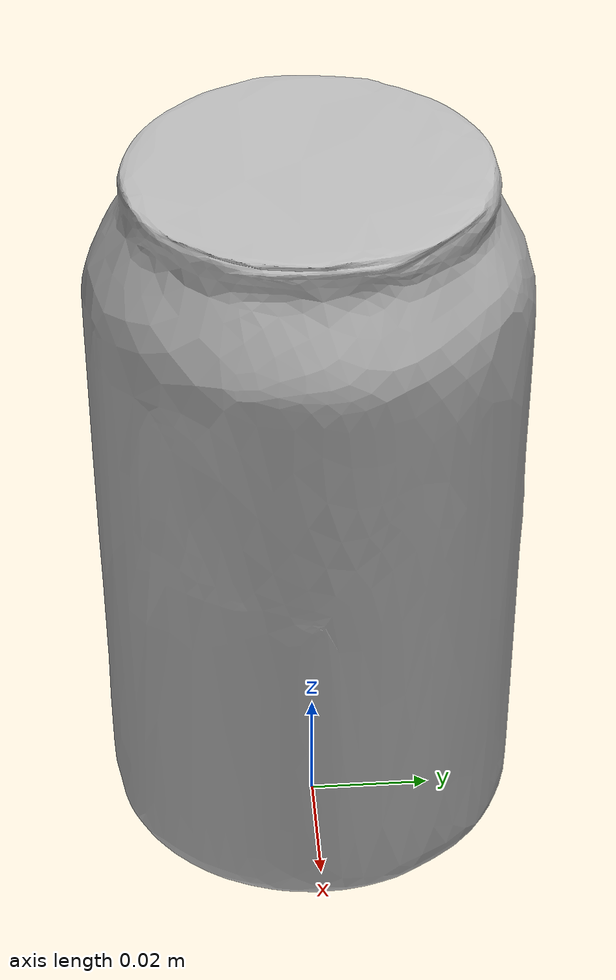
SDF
<?xml version="1.0" ?>
<sdf version="1.6">
    <model name="movable_coke_can_green">
        <link name="link">
            <inertial>
                <pose>0 0 0 0 0 0</pose>
                <mass>0.0149</mass>
                <inertia>
                <ixx>0.00001</ixx>
                <ixy>0.0</ixy>
                <ixz>0.0</ixz>
                <iyy>0.00001</iyy>
                <iyz>0.0</iyz>
                <izz>0.00001</izz>
                </inertia>
            </inertial>
            <collision name="collision">
                <pose>0 0 0.061 0 0 0</pose>
                <geometry>
                    <cylinder>
                    <radius>0.033</radius>
                    <length>0.122</length>
                    </cylinder>
                </geometry>
            </collision>
            <visual name="visual">
                <geometry>
                    <mesh>
                        <uri>model://movable_coke_can_green/meshes/coke_can.obj</uri>
                        <scale>1 1 1</scale>
                    </mesh>
                </geometry>
            </visual>
        </link>
    </model>
</sdf>
